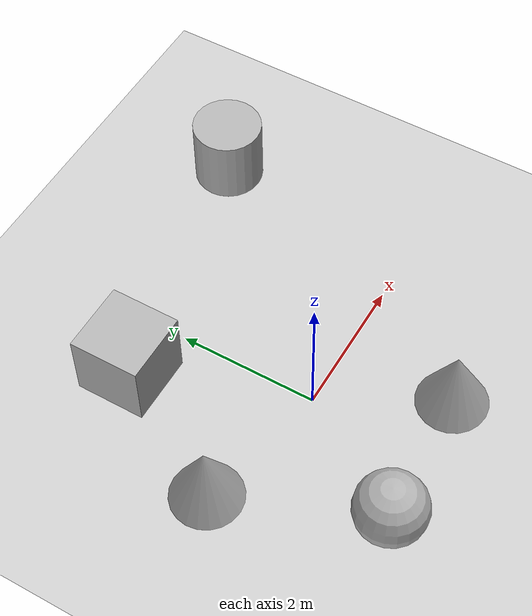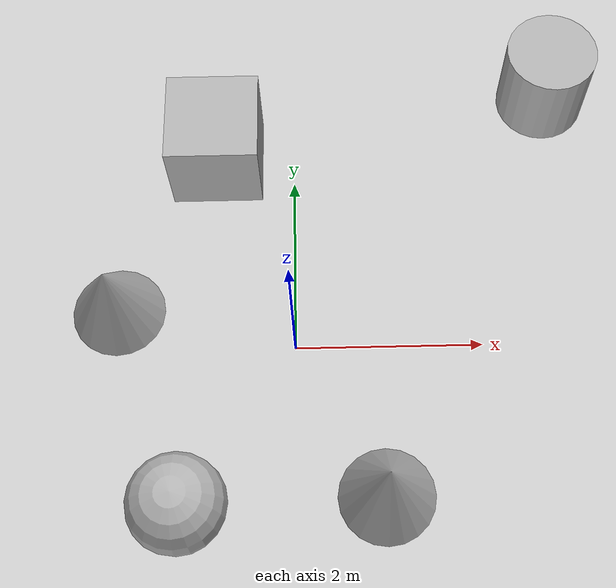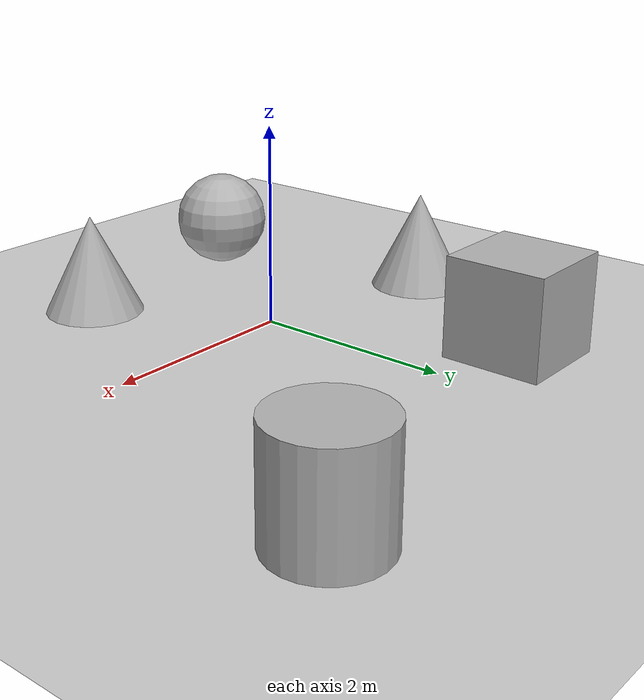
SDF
<sdf version="1.6">
  <world name="empty">
    <physics name="1ms" type="ignored">
      <max_step_size>0.001</max_step_size>
      <real_time_factor>1.0</real_time_factor>
    </physics>
    <plugin
      filename="gz-sim-physics-system"
      name="gz::sim::systems::Physics">
    </plugin>
    <plugin
      filename="gz-sim-user-commands-system"
      name="gz::sim::systems::UserCommands">
    </plugin>
    <plugin
      filename="gz-sim-scene-broadcaster-system"
      name="gz::sim::systems::SceneBroadcaster">
    </plugin>
    <plugin
      filename="gz-sim-sensors-system"
      name="gz::sim::systems::Sensors">
      <render_engine>ogre2</render_engine>
    </plugin>
    <plugin
      filename="gz-sim-contact-system"
      name="gz::sim::systems::Contact">
    </plugin>

    <light type="directional" name="sun">
      <cast_shadows>true</cast_shadows>
      <pose>0 0 10 0 0 0</pose>
      <diffuse>0.8 0.8 0.8 1</diffuse>
      <specular>0.2 0.2 0.2 1</specular>
      <attenuation>
        <range>1000</range>
        <constant>0.9</constant>
        <linear>0.01</linear>
        <quadratic>0.001</quadratic>
      </attenuation>
      <direction>-0.5 0.1 -0.9</direction>
    </light>

    <model name="ground_plane">
      <static>true</static>
      <link name="link">
        <collision name="collision">
          <geometry>
            <plane>
              <normal>0 0 1</normal>
              <size>100 100</size>
            </plane>
          </geometry>
        </collision>
        <visual name="visual">
          <geometry>
            <plane>
              <normal>0 0 1</normal>
              <size>100 100</size>
            </plane>
          </geometry>
          <material>
            <ambient>0.8 0.8 0.8 1</ambient>
            <diffuse>0.8 0.8 0.8 1</diffuse>
            <specular>0.8 0.8 0.8 1</specular>
          </material>
        </visual>
      </link>
    </model>
    <model name='cone'>
      <pose>0.91161626559322251 -1.6134773787267738 0.49999999993296756 5.2547809017876689e-17
        -7.7132841039872392e-10 -7.9337734338616762e-23</pose>
      <link name='cone_link'>
        <inertial>
          <inertia>
            <ixx>0.074999999999999997</ixx>
            <ixy>0</ixy>
            <ixz>0</ixz>
            <iyy>0.074999999999999997</iyy>
            <iyz>0</iyz>
            <izz>0.074999999999999997</izz>
          </inertia>
          <mass>1</mass>
          <pose>0 0 0 0 0 0</pose>
        </inertial>
        <collision name='cone_collision'>
          <geometry>
            <cone>
              <radius>0.5</radius>
              <length>1</length>
            </cone>
          </geometry>
          <surface>
            <friction>
              <ode />
            </friction>
            <bounce />
            <contact />
          </surface>
        </collision>
        <visual name='cone_visual'>
          <geometry>
            <cone>
              <radius>0.5</radius>
              <length>1</length>
            </cone>
          </geometry>
          <material>
            <ambient>0.300000012 0.300000012 0.300000012 1</ambient>
            <diffuse>0.699999988 0.699999988 0.699999988 1</diffuse>
            <specular>1 1 1 1</specular>
          </material>
        </visual>
        <pose>0 0 0 0 0 0</pose>
        <enable_wind>false</enable_wind>
      </link>
      <static>false</static>
      <self_collide>false</self_collide>
    </model>
    <model name='sphere'>
      <pose>-1.1469207187264057 -1.7499540981215942 0.499999999902001 0 0 0</pose>
      <link name='sphere_link'>
        <inertial>
          <inertia>
            <ixx>0.10000000000000001</ixx>
            <ixy>0</ixy>
            <ixz>0</ixz>
            <iyy>0.10000000000000001</iyy>
            <iyz>0</iyz>
            <izz>0.10000000000000001</izz>
          </inertia>
          <mass>1</mass>
          <pose>0 0 0 0 0 0</pose>
        </inertial>
        <collision name='sphere_collision'>
          <geometry>
            <sphere>
              <radius>0.5</radius>
            </sphere>
          </geometry>
          <surface>
            <friction>
              <ode />
            </friction>
            <bounce />
            <contact />
          </surface>
        </collision>
        <visual name='sphere_visual'>
          <geometry>
            <sphere>
              <radius>0.5</radius>
            </sphere>
          </geometry>
          <material>
            <ambient>0.300000012 0.300000012 0.300000012 1</ambient>
            <diffuse>0.699999988 0.699999988 0.699999988 1</diffuse>
            <specular>1 1 1 1</specular>
          </material>
        </visual>
        <pose>0 0 0 0 0 0</pose>
        <enable_wind>false</enable_wind>
      </link>
      <static>false</static>
      <self_collide>false</self_collide>
    </model>
    <model name='cone_0'>
      <pose>-1.9072805367723067 0.46483793681070695 0.49999999993296756 5.2539673238603227e-17
        -7.7132841034849224e-10 -2.2042306062451038e-22</pose>
      <link name='cone_link'>
        <inertial>
          <inertia>
            <ixx>0.074999999999999997</ixx>
            <ixy>0</ixy>
            <ixz>0</ixz>
            <iyy>0.074999999999999997</iyy>
            <iyz>0</iyz>
            <izz>0.074999999999999997</izz>
          </inertia>
          <mass>1</mass>
          <pose>0 0 0 0 0 0</pose>
        </inertial>
        <collision name='cone_collision'>
          <geometry>
            <cone>
              <radius>0.5</radius>
              <length>1</length>
            </cone>
          </geometry>
          <surface>
            <friction>
              <ode />
            </friction>
            <bounce />
            <contact />
          </surface>
        </collision>
        <visual name='cone_visual'>
          <geometry>
            <cone>
              <radius>0.5</radius>
              <length>1</length>
            </cone>
          </geometry>
          <material>
            <ambient>0.300000012 0.300000012 0.300000012 1</ambient>
            <diffuse>0.699999988 0.699999988 0.699999988 1</diffuse>
            <specular>1 1 1 1</specular>
          </material>
        </visual>
        <pose>0 0 0 0 0 0</pose>
        <enable_wind>false</enable_wind>
      </link>
      <static>false</static>
      <self_collide>false</self_collide>
    </model>
    <model name='cylinder'>
      <pose>2.8965879010089006 3.0587893006321143 0.49999942638036005 1.1487795707214598e-20
        -1.0926514193417403e-19 1.7434902510247606e-20</pose>
      <link name='cylinder_link'>
        <inertial>
          <inertia>
            <ixx>0.14580000000000001</ixx>
            <ixy>0</ixy>
            <ixz>0</ixz>
            <iyy>0.14580000000000001</iyy>
            <iyz>0</iyz>
            <izz>0.125</izz>
          </inertia>
          <mass>1</mass>
          <pose>0 0 0 0 0 0</pose>
        </inertial>
        <collision name='cylinder_collision'>
          <geometry>
            <cylinder>
              <radius>0.5</radius>
              <length>1</length>
            </cylinder>
          </geometry>
          <surface>
            <friction>
              <ode />
            </friction>
            <bounce />
            <contact />
          </surface>
        </collision>
        <visual name='cylinder_visual'>
          <geometry>
            <cylinder>
              <radius>0.5</radius>
              <length>1</length>
            </cylinder>
          </geometry>
          <material>
            <ambient>0.300000012 0.300000012 0.300000012 1</ambient>
            <diffuse>0.699999988 0.699999988 0.699999988 1</diffuse>
            <specular>1 1 1 1</specular>
          </material>
        </visual>
        <pose>0 0 0 0 0 0</pose>
        <enable_wind>false</enable_wind>
      </link>
      <static>false</static>
      <self_collide>false</self_collide>
    </model>
    <model name='box'>
      <pose>-0.86128798312273913 2.3170536847881289 0.49999999990199806 6.2287739151293738e-22
        9.3279666454713669e-22 -3.6315533669320137e-22</pose>
      <link name='box_link'>
        <inertial>
          <inertia>
            <ixx>0.16666</ixx>
            <ixy>0</ixy>
            <ixz>0</ixz>
            <iyy>0.16666</iyy>
            <iyz>0</iyz>
            <izz>0.16666</izz>
          </inertia>
          <mass>1</mass>
          <pose>0 0 0 0 0 0</pose>
        </inertial>
        <collision name='box_collision'>
          <geometry>
            <box>
              <size>1 1 1</size>
            </box>
          </geometry>
          <surface>
            <friction>
              <ode />
            </friction>
            <bounce />
            <contact />
          </surface>
        </collision>
        <visual name='box_visual'>
          <geometry>
            <box>
              <size>1 1 1</size>
            </box>
          </geometry>
          <material>
            <ambient>0.300000012 0.300000012 0.300000012 1</ambient>
            <diffuse>0.699999988 0.699999988 0.699999988 1</diffuse>
            <specular>1 1 1 1</specular>
          </material>
        </visual>
        <pose>0 0 0 0 0 0</pose>
        <enable_wind>false</enable_wind>
      </link>
      <static>false</static>
      <self_collide>false</self_collide>
    </model>
  </world>
</sdf>
